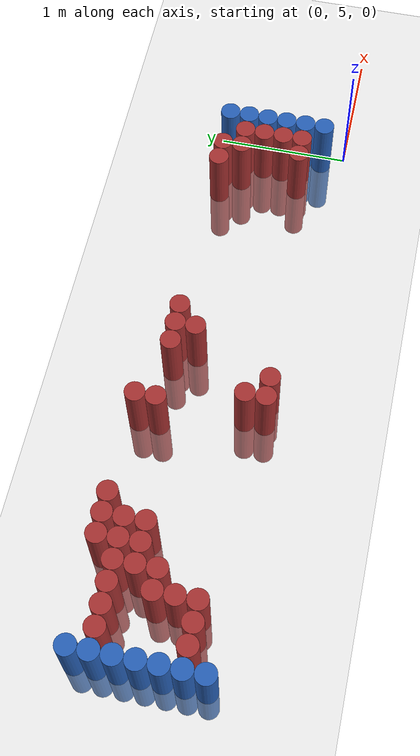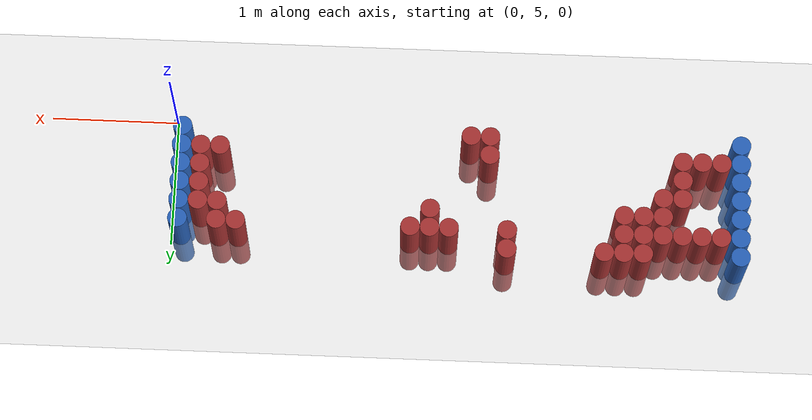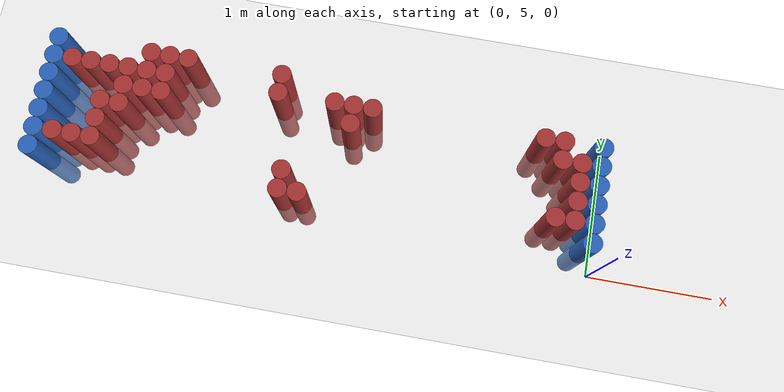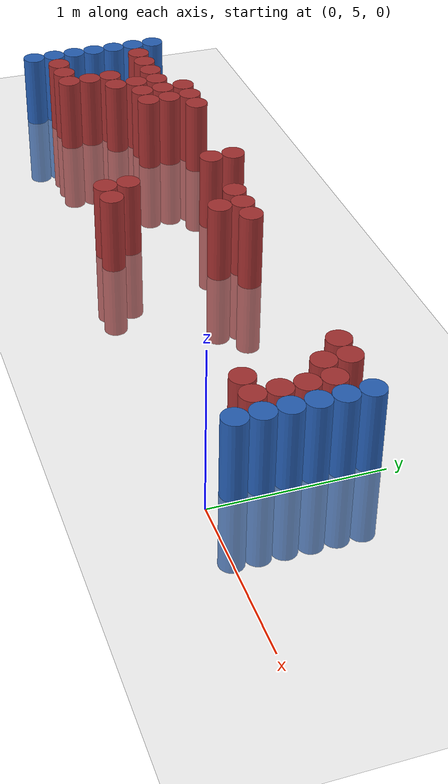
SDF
<sdf version="1.6">
 <world name="default">
  <model name="ground_plane">
   <static>1</static>
   <link name="link">
    <collision name="collision">
     <geometry><plane><normal>0 0 1</normal><size>100 100</size></plane></geometry>
     <surface><friction><ode><mu>100</mu><mu2>50</mu2></ode></friction></surface>
    </collision>
    <visual name="visual">
     <cast_shadows>0</cast_shadows>
     <geometry><plane><normal>0 0 1</normal><size>100 100</size></plane></geometry>
     <material>
      <script><uri>file://media/materials/scripts/gazebo.material</uri><name>Gazebo/Grey</name></script>
     </material>
    </visual>
   </link>
  </model>
  <model name="unit_cylinder_96">
   <static>1</static>
   <pose>-4.425000 5.175000 0.000000 0.000000 0.000000 0.000000</pose>
   <link name="link">
    <inertial>
     <mass>1</mass>
     <inertia><ixx>0.145833</ixx><ixy>0</ixy><ixz>0</ixz><iyy>0.145833</iyy><iyz>0</iyz><izz>0.125</izz></inertia>
    </inertial>
    <collision name="collision">
     <geometry><cylinder><radius>0.075000</radius><length>1</length></cylinder></geometry>
    </collision>
    <visual name="visual">
     <geometry><cylinder><radius>0.075000</radius><length>1</length></cylinder></geometry>
     <material>
      <ambient>0.152000 0.379000 0.720000 1</ambient>
      <diffuse>0.152000 0.379000 0.720000 1</diffuse>
     </material>
     <material>
      <script><name>Gazebo/Grey</name><uri>file://media/materials/scripts/gazebo.material</uri></script>
     </material>
    </visual>
   </link>
  </model>
  <model name="unit_cylinder_97">
   <static>1</static>
   <pose>-4.425000 5.325000 0.000000 0.000000 0.000000 0.000000</pose>
   <link name="link">
    <inertial>
     <mass>1</mass>
     <inertia><ixx>0.145833</ixx><ixy>0</ixy><ixz>0</ixz><iyy>0.145833</iyy><iyz>0</iyz><izz>0.125</izz></inertia>
    </inertial>
    <collision name="collision">
     <geometry><cylinder><radius>0.075000</radius><length>1</length></cylinder></geometry>
    </collision>
    <visual name="visual">
     <geometry><cylinder><radius>0.075000</radius><length>1</length></cylinder></geometry>
     <material>
      <ambient>0.152000 0.379000 0.720000 1</ambient>
      <diffuse>0.152000 0.379000 0.720000 1</diffuse>
     </material>
     <material>
      <script><name>Gazebo/Grey</name><uri>file://media/materials/scripts/gazebo.material</uri></script>
     </material>
    </visual>
   </link>
  </model>
  <model name="unit_cylinder_98">
   <static>1</static>
   <pose>-4.425000 5.475000 0.000000 0.000000 0.000000 0.000000</pose>
   <link name="link">
    <inertial>
     <mass>1</mass>
     <inertia><ixx>0.145833</ixx><ixy>0</ixy><ixz>0</ixz><iyy>0.145833</iyy><iyz>0</iyz><izz>0.125</izz></inertia>
    </inertial>
    <collision name="collision">
     <geometry><cylinder><radius>0.075000</radius><length>1</length></cylinder></geometry>
    </collision>
    <visual name="visual">
     <geometry><cylinder><radius>0.075000</radius><length>1</length></cylinder></geometry>
     <material>
      <ambient>0.152000 0.379000 0.720000 1</ambient>
      <diffuse>0.152000 0.379000 0.720000 1</diffuse>
     </material>
     <material>
      <script><name>Gazebo/Grey</name><uri>file://media/materials/scripts/gazebo.material</uri></script>
     </material>
    </visual>
   </link>
  </model>
  <model name="unit_cylinder_99">
   <static>1</static>
   <pose>-4.425000 5.625000 0.000000 0.000000 0.000000 0.000000</pose>
   <link name="link">
    <inertial>
     <mass>1</mass>
     <inertia><ixx>0.145833</ixx><ixy>0</ixy><ixz>0</ixz><iyy>0.145833</iyy><iyz>0</iyz><izz>0.125</izz></inertia>
    </inertial>
    <collision name="collision">
     <geometry><cylinder><radius>0.075000</radius><length>1</length></cylinder></geometry>
    </collision>
    <visual name="visual">
     <geometry><cylinder><radius>0.075000</radius><length>1</length></cylinder></geometry>
     <material>
      <ambient>0.152000 0.379000 0.720000 1</ambient>
      <diffuse>0.152000 0.379000 0.720000 1</diffuse>
     </material>
     <material>
      <script><name>Gazebo/Grey</name><uri>file://media/materials/scripts/gazebo.material</uri></script>
     </material>
    </visual>
   </link>
  </model>
  <model name="unit_cylinder_100">
   <static>1</static>
   <pose>-4.425000 5.775000 0.000000 0.000000 0.000000 0.000000</pose>
   <link name="link">
    <inertial>
     <mass>1</mass>
     <inertia><ixx>0.145833</ixx><ixy>0</ixy><ixz>0</ixz><iyy>0.145833</iyy><iyz>0</iyz><izz>0.125</izz></inertia>
    </inertial>
    <collision name="collision">
     <geometry><cylinder><radius>0.075000</radius><length>1</length></cylinder></geometry>
    </collision>
    <visual name="visual">
     <geometry><cylinder><radius>0.075000</radius><length>1</length></cylinder></geometry>
     <material>
      <ambient>0.152000 0.379000 0.720000 1</ambient>
      <diffuse>0.152000 0.379000 0.720000 1</diffuse>
     </material>
     <material>
      <script><name>Gazebo/Grey</name><uri>file://media/materials/scripts/gazebo.material</uri></script>
     </material>
    </visual>
   </link>
  </model>
  <model name="unit_cylinder_101">
   <static>1</static>
   <pose>-4.425000 5.925000 0.000000 0.000000 0.000000 0.000000</pose>
   <link name="link">
    <inertial>
     <mass>1</mass>
     <inertia><ixx>0.145833</ixx><ixy>0</ixy><ixz>0</ixz><iyy>0.145833</iyy><iyz>0</iyz><izz>0.125</izz></inertia>
    </inertial>
    <collision name="collision">
     <geometry><cylinder><radius>0.075000</radius><length>1</length></cylinder></geometry>
    </collision>
    <visual name="visual">
     <geometry><cylinder><radius>0.075000</radius><length>1</length></cylinder></geometry>
     <material>
      <ambient>0.152000 0.379000 0.720000 1</ambient>
      <diffuse>0.152000 0.379000 0.720000 1</diffuse>
     </material>
     <material>
      <script><name>Gazebo/Grey</name><uri>file://media/materials/scripts/gazebo.material</uri></script>
     </material>
    </visual>
   </link>
  </model>
  <model name="unit_cylinder_102">
   <static>1</static>
   <pose>-4.425000 6.075000 0.000000 0.000000 0.000000 0.000000</pose>
   <link name="link">
    <inertial>
     <mass>1</mass>
     <inertia><ixx>0.145833</ixx><ixy>0</ixy><ixz>0</ixz><iyy>0.145833</iyy><iyz>0</iyz><izz>0.125</izz></inertia>
    </inertial>
    <collision name="collision">
     <geometry><cylinder><radius>0.075000</radius><length>1</length></cylinder></geometry>
    </collision>
    <visual name="visual">
     <geometry><cylinder><radius>0.075000</radius><length>1</length></cylinder></geometry>
     <material>
      <ambient>0.152000 0.379000 0.720000 1</ambient>
      <diffuse>0.152000 0.379000 0.720000 1</diffuse>
     </material>
     <material>
      <script><name>Gazebo/Grey</name><uri>file://media/materials/scripts/gazebo.material</uri></script>
     </material>
    </visual>
   </link>
  </model>
  <model name="unit_cylinder_126">
   <static>1</static>
   <pose>-4.275000 5.325000 0.000000 0.000000 0.000000 0.000000</pose>
   <link name="link">
    <inertial>
     <mass>1</mass>
     <inertia><ixx>0.145833</ixx><ixy>0</ixy><ixz>0</ixz><iyy>0.145833</iyy><iyz>0</iyz><izz>0.125</izz></inertia>
    </inertial>
    <collision name="collision">
     <geometry><cylinder><radius>0.075000</radius><length>1</length></cylinder></geometry>
    </collision>
    <visual name="visual">
     <geometry><cylinder><radius>0.075000</radius><length>1</length></cylinder></geometry>
     <material>
      <ambient>0.648000 0.192000 0.192000 1</ambient>
      <diffuse>0.648000 0.192000 0.192000 1</diffuse>
     </material>
     <material>
      <script><name>Gazebo/Grey</name><uri>file://media/materials/scripts/gazebo.material</uri></script>
     </material>
    </visual>
   </link>
  </model>
  <model name="unit_cylinder_127">
   <static>1</static>
   <pose>-4.275000 5.925000 0.000000 0.000000 0.000000 0.000000</pose>
   <link name="link">
    <inertial>
     <mass>1</mass>
     <inertia><ixx>0.145833</ixx><ixy>0</ixy><ixz>0</ixz><iyy>0.145833</iyy><iyz>0</iyz><izz>0.125</izz></inertia>
    </inertial>
    <collision name="collision">
     <geometry><cylinder><radius>0.075000</radius><length>1</length></cylinder></geometry>
    </collision>
    <visual name="visual">
     <geometry><cylinder><radius>0.075000</radius><length>1</length></cylinder></geometry>
     <material>
      <ambient>0.648000 0.192000 0.192000 1</ambient>
      <diffuse>0.648000 0.192000 0.192000 1</diffuse>
     </material>
     <material>
      <script><name>Gazebo/Grey</name><uri>file://media/materials/scripts/gazebo.material</uri></script>
     </material>
    </visual>
   </link>
  </model>
  <model name="unit_cylinder_143">
   <static>1</static>
   <pose>-4.125000 5.325000 0.000000 0.000000 0.000000 0.000000</pose>
   <link name="link">
    <inertial>
     <mass>1</mass>
     <inertia><ixx>0.145833</ixx><ixy>0</ixy><ixz>0</ixz><iyy>0.145833</iyy><iyz>0</iyz><izz>0.125</izz></inertia>
    </inertial>
    <collision name="collision">
     <geometry><cylinder><radius>0.075000</radius><length>1</length></cylinder></geometry>
    </collision>
    <visual name="visual">
     <geometry><cylinder><radius>0.075000</radius><length>1</length></cylinder></geometry>
     <material>
      <ambient>0.648000 0.192000 0.192000 1</ambient>
      <diffuse>0.648000 0.192000 0.192000 1</diffuse>
     </material>
     <material>
      <script><name>Gazebo/Grey</name><uri>file://media/materials/scripts/gazebo.material</uri></script>
     </material>
    </visual>
   </link>
  </model>
  <model name="unit_cylinder_144">
   <static>1</static>
   <pose>-4.125000 5.925000 0.000000 0.000000 0.000000 0.000000</pose>
   <link name="link">
    <inertial>
     <mass>1</mass>
     <inertia><ixx>0.145833</ixx><ixy>0</ixy><ixz>0</ixz><iyy>0.145833</iyy><iyz>0</iyz><izz>0.125</izz></inertia>
    </inertial>
    <collision name="collision">
     <geometry><cylinder><radius>0.075000</radius><length>1</length></cylinder></geometry>
    </collision>
    <visual name="visual">
     <geometry><cylinder><radius>0.075000</radius><length>1</length></cylinder></geometry>
     <material>
      <ambient>0.648000 0.192000 0.192000 1</ambient>
      <diffuse>0.648000 0.192000 0.192000 1</diffuse>
     </material>
     <material>
      <script><name>Gazebo/Grey</name><uri>file://media/materials/scripts/gazebo.material</uri></script>
     </material>
    </visual>
   </link>
  </model>
  <model name="unit_cylinder_151">
   <static>1</static>
   <pose>-3.975000 5.325000 0.000000 0.000000 0.000000 0.000000</pose>
   <link name="link">
    <inertial>
     <mass>1</mass>
     <inertia><ixx>0.145833</ixx><ixy>0</ixy><ixz>0</ixz><iyy>0.145833</iyy><iyz>0</iyz><izz>0.125</izz></inertia>
    </inertial>
    <collision name="collision">
     <geometry><cylinder><radius>0.075000</radius><length>1</length></cylinder></geometry>
    </collision>
    <visual name="visual">
     <geometry><cylinder><radius>0.075000</radius><length>1</length></cylinder></geometry>
     <material>
      <ambient>0.648000 0.192000 0.192000 1</ambient>
      <diffuse>0.648000 0.192000 0.192000 1</diffuse>
     </material>
     <material>
      <script><name>Gazebo/Grey</name><uri>file://media/materials/scripts/gazebo.material</uri></script>
     </material>
    </visual>
   </link>
  </model>
  <model name="unit_cylinder_152">
   <static>1</static>
   <pose>-3.975000 5.475000 0.000000 0.000000 0.000000 0.000000</pose>
   <link name="link">
    <inertial>
     <mass>1</mass>
     <inertia><ixx>0.145833</ixx><ixy>0</ixy><ixz>0</ixz><iyy>0.145833</iyy><iyz>0</iyz><izz>0.125</izz></inertia>
    </inertial>
    <collision name="collision">
     <geometry><cylinder><radius>0.075000</radius><length>1</length></cylinder></geometry>
    </collision>
    <visual name="visual">
     <geometry><cylinder><radius>0.075000</radius><length>1</length></cylinder></geometry>
     <material>
      <ambient>0.648000 0.192000 0.192000 1</ambient>
      <diffuse>0.648000 0.192000 0.192000 1</diffuse>
     </material>
     <material>
      <script><name>Gazebo/Grey</name><uri>file://media/materials/scripts/gazebo.material</uri></script>
     </material>
    </visual>
   </link>
  </model>
  <model name="unit_cylinder_153">
   <static>1</static>
   <pose>-3.975000 5.625000 0.000000 0.000000 0.000000 0.000000</pose>
   <link name="link">
    <inertial>
     <mass>1</mass>
     <inertia><ixx>0.145833</ixx><ixy>0</ixy><ixz>0</ixz><iyy>0.145833</iyy><iyz>0</iyz><izz>0.125</izz></inertia>
    </inertial>
    <collision name="collision">
     <geometry><cylinder><radius>0.075000</radius><length>1</length></cylinder></geometry>
    </collision>
    <visual name="visual">
     <geometry><cylinder><radius>0.075000</radius><length>1</length></cylinder></geometry>
     <material>
      <ambient>0.648000 0.192000 0.192000 1</ambient>
      <diffuse>0.648000 0.192000 0.192000 1</diffuse>
     </material>
     <material>
      <script><name>Gazebo/Grey</name><uri>file://media/materials/scripts/gazebo.material</uri></script>
     </material>
    </visual>
   </link>
  </model>
  <model name="unit_cylinder_154">
   <static>1</static>
   <pose>-3.975000 5.925000 0.000000 0.000000 0.000000 0.000000</pose>
   <link name="link">
    <inertial>
     <mass>1</mass>
     <inertia><ixx>0.145833</ixx><ixy>0</ixy><ixz>0</ixz><iyy>0.145833</iyy><iyz>0</iyz><izz>0.125</izz></inertia>
    </inertial>
    <collision name="collision">
     <geometry><cylinder><radius>0.075000</radius><length>1</length></cylinder></geometry>
    </collision>
    <visual name="visual">
     <geometry><cylinder><radius>0.075000</radius><length>1</length></cylinder></geometry>
     <material>
      <ambient>0.648000 0.192000 0.192000 1</ambient>
      <diffuse>0.648000 0.192000 0.192000 1</diffuse>
     </material>
     <material>
      <script><name>Gazebo/Grey</name><uri>file://media/materials/scripts/gazebo.material</uri></script>
     </material>
    </visual>
   </link>
  </model>
  <model name="unit_cylinder_158">
   <static>1</static>
   <pose>-3.825000 5.625000 0.000000 0.000000 0.000000 0.000000</pose>
   <link name="link">
    <inertial>
     <mass>1</mass>
     <inertia><ixx>0.145833</ixx><ixy>0</ixy><ixz>0</ixz><iyy>0.145833</iyy><iyz>0</iyz><izz>0.125</izz></inertia>
    </inertial>
    <collision name="collision">
     <geometry><cylinder><radius>0.075000</radius><length>1</length></cylinder></geometry>
    </collision>
    <visual name="visual">
     <geometry><cylinder><radius>0.075000</radius><length>1</length></cylinder></geometry>
     <material>
      <ambient>0.648000 0.192000 0.192000 1</ambient>
      <diffuse>0.648000 0.192000 0.192000 1</diffuse>
     </material>
     <material>
      <script><name>Gazebo/Grey</name><uri>file://media/materials/scripts/gazebo.material</uri></script>
     </material>
    </visual>
   </link>
  </model>
  <model name="unit_cylinder_159">
   <static>1</static>
   <pose>-3.825000 5.775000 0.000000 0.000000 0.000000 0.000000</pose>
   <link name="link">
    <inertial>
     <mass>1</mass>
     <inertia><ixx>0.145833</ixx><ixy>0</ixy><ixz>0</ixz><iyy>0.145833</iyy><iyz>0</iyz><izz>0.125</izz></inertia>
    </inertial>
    <collision name="collision">
     <geometry><cylinder><radius>0.075000</radius><length>1</length></cylinder></geometry>
    </collision>
    <visual name="visual">
     <geometry><cylinder><radius>0.075000</radius><length>1</length></cylinder></geometry>
     <material>
      <ambient>0.648000 0.192000 0.192000 1</ambient>
      <diffuse>0.648000 0.192000 0.192000 1</diffuse>
     </material>
     <material>
      <script><name>Gazebo/Grey</name><uri>file://media/materials/scripts/gazebo.material</uri></script>
     </material>
    </visual>
   </link>
  </model>
  <model name="unit_cylinder_160">
   <static>1</static>
   <pose>-3.825000 5.925000 0.000000 0.000000 0.000000 0.000000</pose>
   <link name="link">
    <inertial>
     <mass>1</mass>
     <inertia><ixx>0.145833</ixx><ixy>0</ixy><ixz>0</ixz><iyy>0.145833</iyy><iyz>0</iyz><izz>0.125</izz></inertia>
    </inertial>
    <collision name="collision">
     <geometry><cylinder><radius>0.075000</radius><length>1</length></cylinder></geometry>
    </collision>
    <visual name="visual">
     <geometry><cylinder><radius>0.075000</radius><length>1</length></cylinder></geometry>
     <material>
      <ambient>0.648000 0.192000 0.192000 1</ambient>
      <diffuse>0.648000 0.192000 0.192000 1</diffuse>
     </material>
     <material>
      <script><name>Gazebo/Grey</name><uri>file://media/materials/scripts/gazebo.material</uri></script>
     </material>
    </visual>
   </link>
  </model>
  <model name="unit_cylinder_164">
   <static>1</static>
   <pose>-3.675000 5.775000 0.000000 0.000000 0.000000 0.000000</pose>
   <link name="link">
    <inertial>
     <mass>1</mass>
     <inertia><ixx>0.145833</ixx><ixy>0</ixy><ixz>0</ixz><iyy>0.145833</iyy><iyz>0</iyz><izz>0.125</izz></inertia>
    </inertial>
    <collision name="collision">
     <geometry><cylinder><radius>0.075000</radius><length>1</length></cylinder></geometry>
    </collision>
    <visual name="visual">
     <geometry><cylinder><radius>0.075000</radius><length>1</length></cylinder></geometry>
     <material>
      <ambient>0.648000 0.192000 0.192000 1</ambient>
      <diffuse>0.648000 0.192000 0.192000 1</diffuse>
     </material>
     <material>
      <script><name>Gazebo/Grey</name><uri>file://media/materials/scripts/gazebo.material</uri></script>
     </material>
    </visual>
   </link>
  </model>
  <model name="unit_cylinder_165">
   <static>1</static>
   <pose>-3.675000 5.925000 0.000000 0.000000 0.000000 0.000000</pose>
   <link name="link">
    <inertial>
     <mass>1</mass>
     <inertia><ixx>0.145833</ixx><ixy>0</ixy><ixz>0</ixz><iyy>0.145833</iyy><iyz>0</iyz><izz>0.125</izz></inertia>
    </inertial>
    <collision name="collision">
     <geometry><cylinder><radius>0.075000</radius><length>1</length></cylinder></geometry>
    </collision>
    <visual name="visual">
     <geometry><cylinder><radius>0.075000</radius><length>1</length></cylinder></geometry>
     <material>
      <ambient>0.648000 0.192000 0.192000 1</ambient>
      <diffuse>0.648000 0.192000 0.192000 1</diffuse>
     </material>
     <material>
      <script><name>Gazebo/Grey</name><uri>file://media/materials/scripts/gazebo.material</uri></script>
     </material>
    </visual>
   </link>
  </model>
  <model name="unit_cylinder_166">
   <static>1</static>
   <pose>-3.675000 6.075000 0.000000 0.000000 0.000000 0.000000</pose>
   <link name="link">
    <inertial>
     <mass>1</mass>
     <inertia><ixx>0.145833</ixx><ixy>0</ixy><ixz>0</ixz><iyy>0.145833</iyy><iyz>0</iyz><izz>0.125</izz></inertia>
    </inertial>
    <collision name="collision">
     <geometry><cylinder><radius>0.075000</radius><length>1</length></cylinder></geometry>
    </collision>
    <visual name="visual">
     <geometry><cylinder><radius>0.075000</radius><length>1</length></cylinder></geometry>
     <material>
      <ambient>0.648000 0.192000 0.192000 1</ambient>
      <diffuse>0.648000 0.192000 0.192000 1</diffuse>
     </material>
     <material>
      <script><name>Gazebo/Grey</name><uri>file://media/materials/scripts/gazebo.material</uri></script>
     </material>
    </visual>
   </link>
  </model>
  <model name="unit_cylinder_171">
   <static>1</static>
   <pose>-3.525000 5.775000 0.000000 0.000000 0.000000 0.000000</pose>
   <link name="link">
    <inertial>
     <mass>1</mass>
     <inertia><ixx>0.145833</ixx><ixy>0</ixy><ixz>0</ixz><iyy>0.145833</iyy><iyz>0</iyz><izz>0.125</izz></inertia>
    </inertial>
    <collision name="collision">
     <geometry><cylinder><radius>0.075000</radius><length>1</length></cylinder></geometry>
    </collision>
    <visual name="visual">
     <geometry><cylinder><radius>0.075000</radius><length>1</length></cylinder></geometry>
     <material>
      <ambient>0.648000 0.192000 0.192000 1</ambient>
      <diffuse>0.648000 0.192000 0.192000 1</diffuse>
     </material>
     <material>
      <script><name>Gazebo/Grey</name><uri>file://media/materials/scripts/gazebo.material</uri></script>
     </material>
    </visual>
   </link>
  </model>
  <model name="unit_cylinder_172">
   <static>1</static>
   <pose>-3.525000 5.925000 0.000000 0.000000 0.000000 0.000000</pose>
   <link name="link">
    <inertial>
     <mass>1</mass>
     <inertia><ixx>0.145833</ixx><ixy>0</ixy><ixz>0</ixz><iyy>0.145833</iyy><iyz>0</iyz><izz>0.125</izz></inertia>
    </inertial>
    <collision name="collision">
     <geometry><cylinder><radius>0.075000</radius><length>1</length></cylinder></geometry>
    </collision>
    <visual name="visual">
     <geometry><cylinder><radius>0.075000</radius><length>1</length></cylinder></geometry>
     <material>
      <ambient>0.648000 0.192000 0.192000 1</ambient>
      <diffuse>0.648000 0.192000 0.192000 1</diffuse>
     </material>
     <material>
      <script><name>Gazebo/Grey</name><uri>file://media/materials/scripts/gazebo.material</uri></script>
     </material>
    </visual>
   </link>
  </model>
  <model name="unit_cylinder_173">
   <static>1</static>
   <pose>-3.525000 6.075000 0.000000 0.000000 0.000000 0.000000</pose>
   <link name="link">
    <inertial>
     <mass>1</mass>
     <inertia><ixx>0.145833</ixx><ixy>0</ixy><ixz>0</ixz><iyy>0.145833</iyy><iyz>0</iyz><izz>0.125</izz></inertia>
    </inertial>
    <collision name="collision">
     <geometry><cylinder><radius>0.075000</radius><length>1</length></cylinder></geometry>
    </collision>
    <visual name="visual">
     <geometry><cylinder><radius>0.075000</radius><length>1</length></cylinder></geometry>
     <material>
      <ambient>0.648000 0.192000 0.192000 1</ambient>
      <diffuse>0.648000 0.192000 0.192000 1</diffuse>
     </material>
     <material>
      <script><name>Gazebo/Grey</name><uri>file://media/materials/scripts/gazebo.material</uri></script>
     </material>
    </visual>
   </link>
  </model>
  <model name="unit_cylinder_182">
   <static>1</static>
   <pose>-3.375000 6.075000 0.000000 0.000000 0.000000 0.000000</pose>
   <link name="link">
    <inertial>
     <mass>1</mass>
     <inertia><ixx>0.145833</ixx><ixy>0</ixy><ixz>0</ixz><iyy>0.145833</iyy><iyz>0</iyz><izz>0.125</izz></inertia>
    </inertial>
    <collision name="collision">
     <geometry><cylinder><radius>0.075000</radius><length>1</length></cylinder></geometry>
    </collision>
    <visual name="visual">
     <geometry><cylinder><radius>0.075000</radius><length>1</length></cylinder></geometry>
     <material>
      <ambient>0.648000 0.192000 0.192000 1</ambient>
      <diffuse>0.648000 0.192000 0.192000 1</diffuse>
     </material>
     <material>
      <script><name>Gazebo/Grey</name><uri>file://media/materials/scripts/gazebo.material</uri></script>
     </material>
    </visual>
   </link>
  </model>
  <model name="unit_cylinder_207">
   <static>1</static>
   <pose>-2.625000 5.925000 0.000000 0.000000 0.000000 0.000000</pose>
   <link name="link">
    <inertial>
     <mass>1</mass>
     <inertia><ixx>0.145833</ixx><ixy>0</ixy><ixz>0</ixz><iyy>0.145833</iyy><iyz>0</iyz><izz>0.125</izz></inertia>
    </inertial>
    <collision name="collision">
     <geometry><cylinder><radius>0.075000</radius><length>1</length></cylinder></geometry>
    </collision>
    <visual name="visual">
     <geometry><cylinder><radius>0.075000</radius><length>1</length></cylinder></geometry>
     <material>
      <ambient>0.648000 0.192000 0.192000 1</ambient>
      <diffuse>0.648000 0.192000 0.192000 1</diffuse>
     </material>
     <material>
      <script><name>Gazebo/Grey</name><uri>file://media/materials/scripts/gazebo.material</uri></script>
     </material>
    </visual>
   </link>
  </model>
  <model name="unit_cylinder_208">
   <static>1</static>
   <pose>-2.625000 6.075000 0.000000 0.000000 0.000000 0.000000</pose>
   <link name="link">
    <inertial>
     <mass>1</mass>
     <inertia><ixx>0.145833</ixx><ixy>0</ixy><ixz>0</ixz><iyy>0.145833</iyy><iyz>0</iyz><izz>0.125</izz></inertia>
    </inertial>
    <collision name="collision">
     <geometry><cylinder><radius>0.075000</radius><length>1</length></cylinder></geometry>
    </collision>
    <visual name="visual">
     <geometry><cylinder><radius>0.075000</radius><length>1</length></cylinder></geometry>
     <material>
      <ambient>0.648000 0.192000 0.192000 1</ambient>
      <diffuse>0.648000 0.192000 0.192000 1</diffuse>
     </material>
     <material>
      <script><name>Gazebo/Grey</name><uri>file://media/materials/scripts/gazebo.material</uri></script>
     </material>
    </visual>
   </link>
  </model>
  <model name="unit_cylinder_216">
   <static>1</static>
   <pose>-2.475000 5.175000 0.000000 0.000000 0.000000 0.000000</pose>
   <link name="link">
    <inertial>
     <mass>1</mass>
     <inertia><ixx>0.145833</ixx><ixy>0</ixy><ixz>0</ixz><iyy>0.145833</iyy><iyz>0</iyz><izz>0.125</izz></inertia>
    </inertial>
    <collision name="collision">
     <geometry><cylinder><radius>0.075000</radius><length>1</length></cylinder></geometry>
    </collision>
    <visual name="visual">
     <geometry><cylinder><radius>0.075000</radius><length>1</length></cylinder></geometry>
     <material>
      <ambient>0.648000 0.192000 0.192000 1</ambient>
      <diffuse>0.648000 0.192000 0.192000 1</diffuse>
     </material>
     <material>
      <script><name>Gazebo/Grey</name><uri>file://media/materials/scripts/gazebo.material</uri></script>
     </material>
    </visual>
   </link>
  </model>
  <model name="unit_cylinder_217">
   <static>1</static>
   <pose>-2.475000 5.325000 0.000000 0.000000 0.000000 0.000000</pose>
   <link name="link">
    <inertial>
     <mass>1</mass>
     <inertia><ixx>0.145833</ixx><ixy>0</ixy><ixz>0</ixz><iyy>0.145833</iyy><iyz>0</iyz><izz>0.125</izz></inertia>
    </inertial>
    <collision name="collision">
     <geometry><cylinder><radius>0.075000</radius><length>1</length></cylinder></geometry>
    </collision>
    <visual name="visual">
     <geometry><cylinder><radius>0.075000</radius><length>1</length></cylinder></geometry>
     <material>
      <ambient>0.648000 0.192000 0.192000 1</ambient>
      <diffuse>0.648000 0.192000 0.192000 1</diffuse>
     </material>
     <material>
      <script><name>Gazebo/Grey</name><uri>file://media/materials/scripts/gazebo.material</uri></script>
     </material>
    </visual>
   </link>
  </model>
  <model name="unit_cylinder_234">
   <static>1</static>
   <pose>-2.325000 5.175000 0.000000 0.000000 0.000000 0.000000</pose>
   <link name="link">
    <inertial>
     <mass>1</mass>
     <inertia><ixx>0.145833</ixx><ixy>0</ixy><ixz>0</ixz><iyy>0.145833</iyy><iyz>0</iyz><izz>0.125</izz></inertia>
    </inertial>
    <collision name="collision">
     <geometry><cylinder><radius>0.075000</radius><length>1</length></cylinder></geometry>
    </collision>
    <visual name="visual">
     <geometry><cylinder><radius>0.075000</radius><length>1</length></cylinder></geometry>
     <material>
      <ambient>0.648000 0.192000 0.192000 1</ambient>
      <diffuse>0.648000 0.192000 0.192000 1</diffuse>
     </material>
     <material>
      <script><name>Gazebo/Grey</name><uri>file://media/materials/scripts/gazebo.material</uri></script>
     </material>
    </visual>
   </link>
  </model>
  <model name="unit_cylinder_241">
   <static>1</static>
   <pose>-2.175000 5.925000 0.000000 0.000000 0.000000 0.000000</pose>
   <link name="link">
    <inertial>
     <mass>1</mass>
     <inertia><ixx>0.145833</ixx><ixy>0</ixy><ixz>0</ixz><iyy>0.145833</iyy><iyz>0</iyz><izz>0.125</izz></inertia>
    </inertial>
    <collision name="collision">
     <geometry><cylinder><radius>0.075000</radius><length>1</length></cylinder></geometry>
    </collision>
    <visual name="visual">
     <geometry><cylinder><radius>0.075000</radius><length>1</length></cylinder></geometry>
     <material>
      <ambient>0.648000 0.192000 0.192000 1</ambient>
      <diffuse>0.648000 0.192000 0.192000 1</diffuse>
     </material>
     <material>
      <script><name>Gazebo/Grey</name><uri>file://media/materials/scripts/gazebo.material</uri></script>
     </material>
    </visual>
   </link>
  </model>
  <model name="unit_cylinder_245">
   <static>1</static>
   <pose>-2.025000 5.775000 0.000000 0.000000 0.000000 0.000000</pose>
   <link name="link">
    <inertial>
     <mass>1</mass>
     <inertia><ixx>0.145833</ixx><ixy>0</ixy><ixz>0</ixz><iyy>0.145833</iyy><iyz>0</iyz><izz>0.125</izz></inertia>
    </inertial>
    <collision name="collision">
     <geometry><cylinder><radius>0.075000</radius><length>1</length></cylinder></geometry>
    </collision>
    <visual name="visual">
     <geometry><cylinder><radius>0.075000</radius><length>1</length></cylinder></geometry>
     <material>
      <ambient>0.648000 0.192000 0.192000 1</ambient>
      <diffuse>0.648000 0.192000 0.192000 1</diffuse>
     </material>
     <material>
      <script><name>Gazebo/Grey</name><uri>file://media/materials/scripts/gazebo.material</uri></script>
     </material>
    </visual>
   </link>
  </model>
  <model name="unit_cylinder_246">
   <static>1</static>
   <pose>-2.025000 5.925000 0.000000 0.000000 0.000000 0.000000</pose>
   <link name="link">
    <inertial>
     <mass>1</mass>
     <inertia><ixx>0.145833</ixx><ixy>0</ixy><ixz>0</ixz><iyy>0.145833</iyy><iyz>0</iyz><izz>0.125</izz></inertia>
    </inertial>
    <collision name="collision">
     <geometry><cylinder><radius>0.075000</radius><length>1</length></cylinder></geometry>
    </collision>
    <visual name="visual">
     <geometry><cylinder><radius>0.075000</radius><length>1</length></cylinder></geometry>
     <material>
      <ambient>0.648000 0.192000 0.192000 1</ambient>
      <diffuse>0.648000 0.192000 0.192000 1</diffuse>
     </material>
     <material>
      <script><name>Gazebo/Grey</name><uri>file://media/materials/scripts/gazebo.material</uri></script>
     </material>
    </visual>
   </link>
  </model>
  <model name="unit_cylinder_250">
   <static>1</static>
   <pose>-1.875000 5.925000 0.000000 0.000000 0.000000 0.000000</pose>
   <link name="link">
    <inertial>
     <mass>1</mass>
     <inertia><ixx>0.145833</ixx><ixy>0</ixy><ixz>0</ixz><iyy>0.145833</iyy><iyz>0</iyz><izz>0.125</izz></inertia>
    </inertial>
    <collision name="collision">
     <geometry><cylinder><radius>0.075000</radius><length>1</length></cylinder></geometry>
    </collision>
    <visual name="visual">
     <geometry><cylinder><radius>0.075000</radius><length>1</length></cylinder></geometry>
     <material>
      <ambient>0.648000 0.192000 0.192000 1</ambient>
      <diffuse>0.648000 0.192000 0.192000 1</diffuse>
     </material>
     <material>
      <script><name>Gazebo/Grey</name><uri>file://media/materials/scripts/gazebo.material</uri></script>
     </material>
    </visual>
   </link>
  </model>
  <model name="unit_cylinder_270">
   <static>1</static>
   <pose>-0.525000 5.925000 0.000000 0.000000 0.000000 0.000000</pose>
   <link name="link">
    <inertial>
     <mass>1</mass>
     <inertia><ixx>0.145833</ixx><ixy>0</ixy><ixz>0</ixz><iyy>0.145833</iyy><iyz>0</iyz><izz>0.125</izz></inertia>
    </inertial>
    <collision name="collision">
     <geometry><cylinder><radius>0.075000</radius><length>1</length></cylinder></geometry>
    </collision>
    <visual name="visual">
     <geometry><cylinder><radius>0.075000</radius><length>1</length></cylinder></geometry>
     <material>
      <ambient>0.648000 0.192000 0.192000 1</ambient>
      <diffuse>0.648000 0.192000 0.192000 1</diffuse>
     </material>
     <material>
      <script><name>Gazebo/Grey</name><uri>file://media/materials/scripts/gazebo.material</uri></script>
     </material>
    </visual>
   </link>
  </model>
  <model name="unit_cylinder_276">
   <static>1</static>
   <pose>-0.375000 5.325000 0.000000 0.000000 0.000000 0.000000</pose>
   <link name="link">
    <inertial>
     <mass>1</mass>
     <inertia><ixx>0.145833</ixx><ixy>0</ixy><ixz>0</ixz><iyy>0.145833</iyy><iyz>0</iyz><izz>0.125</izz></inertia>
    </inertial>
    <collision name="collision">
     <geometry><cylinder><radius>0.075000</radius><length>1</length></cylinder></geometry>
    </collision>
    <visual name="visual">
     <geometry><cylinder><radius>0.075000</radius><length>1</length></cylinder></geometry>
     <material>
      <ambient>0.648000 0.192000 0.192000 1</ambient>
      <diffuse>0.648000 0.192000 0.192000 1</diffuse>
     </material>
     <material>
      <script><name>Gazebo/Grey</name><uri>file://media/materials/scripts/gazebo.material</uri></script>
     </material>
    </visual>
   </link>
  </model>
  <model name="unit_cylinder_277">
   <static>1</static>
   <pose>-0.375000 5.775000 0.000000 0.000000 0.000000 0.000000</pose>
   <link name="link">
    <inertial>
     <mass>1</mass>
     <inertia><ixx>0.145833</ixx><ixy>0</ixy><ixz>0</ixz><iyy>0.145833</iyy><iyz>0</iyz><izz>0.125</izz></inertia>
    </inertial>
    <collision name="collision">
     <geometry><cylinder><radius>0.075000</radius><length>1</length></cylinder></geometry>
    </collision>
    <visual name="visual">
     <geometry><cylinder><radius>0.075000</radius><length>1</length></cylinder></geometry>
     <material>
      <ambient>0.648000 0.192000 0.192000 1</ambient>
      <diffuse>0.648000 0.192000 0.192000 1</diffuse>
     </material>
     <material>
      <script><name>Gazebo/Grey</name><uri>file://media/materials/scripts/gazebo.material</uri></script>
     </material>
    </visual>
   </link>
  </model>
  <model name="unit_cylinder_278">
   <static>1</static>
   <pose>-0.375000 5.925000 0.000000 0.000000 0.000000 0.000000</pose>
   <link name="link">
    <inertial>
     <mass>1</mass>
     <inertia><ixx>0.145833</ixx><ixy>0</ixy><ixz>0</ixz><iyy>0.145833</iyy><iyz>0</iyz><izz>0.125</izz></inertia>
    </inertial>
    <collision name="collision">
     <geometry><cylinder><radius>0.075000</radius><length>1</length></cylinder></geometry>
    </collision>
    <visual name="visual">
     <geometry><cylinder><radius>0.075000</radius><length>1</length></cylinder></geometry>
     <material>
      <ambient>0.648000 0.192000 0.192000 1</ambient>
      <diffuse>0.648000 0.192000 0.192000 1</diffuse>
     </material>
     <material>
      <script><name>Gazebo/Grey</name><uri>file://media/materials/scripts/gazebo.material</uri></script>
     </material>
    </visual>
   </link>
  </model>
  <model name="unit_cylinder_287">
   <static>1</static>
   <pose>-0.225000 5.325000 0.000000 0.000000 0.000000 0.000000</pose>
   <link name="link">
    <inertial>
     <mass>1</mass>
     <inertia><ixx>0.145833</ixx><ixy>0</ixy><ixz>0</ixz><iyy>0.145833</iyy><iyz>0</iyz><izz>0.125</izz></inertia>
    </inertial>
    <collision name="collision">
     <geometry><cylinder><radius>0.075000</radius><length>1</length></cylinder></geometry>
    </collision>
    <visual name="visual">
     <geometry><cylinder><radius>0.075000</radius><length>1</length></cylinder></geometry>
     <material>
      <ambient>0.648000 0.192000 0.192000 1</ambient>
      <diffuse>0.648000 0.192000 0.192000 1</diffuse>
     </material>
     <material>
      <script><name>Gazebo/Grey</name><uri>file://media/materials/scripts/gazebo.material</uri></script>
     </material>
    </visual>
   </link>
  </model>
  <model name="unit_cylinder_288">
   <static>1</static>
   <pose>-0.225000 5.475000 0.000000 0.000000 0.000000 0.000000</pose>
   <link name="link">
    <inertial>
     <mass>1</mass>
     <inertia><ixx>0.145833</ixx><ixy>0</ixy><ixz>0</ixz><iyy>0.145833</iyy><iyz>0</iyz><izz>0.125</izz></inertia>
    </inertial>
    <collision name="collision">
     <geometry><cylinder><radius>0.075000</radius><length>1</length></cylinder></geometry>
    </collision>
    <visual name="visual">
     <geometry><cylinder><radius>0.075000</radius><length>1</length></cylinder></geometry>
     <material>
      <ambient>0.648000 0.192000 0.192000 1</ambient>
      <diffuse>0.648000 0.192000 0.192000 1</diffuse>
     </material>
     <material>
      <script><name>Gazebo/Grey</name><uri>file://media/materials/scripts/gazebo.material</uri></script>
     </material>
    </visual>
   </link>
  </model>
  <model name="unit_cylinder_289">
   <static>1</static>
   <pose>-0.225000 5.625000 0.000000 0.000000 0.000000 0.000000</pose>
   <link name="link">
    <inertial>
     <mass>1</mass>
     <inertia><ixx>0.145833</ixx><ixy>0</ixy><ixz>0</ixz><iyy>0.145833</iyy><iyz>0</iyz><izz>0.125</izz></inertia>
    </inertial>
    <collision name="collision">
     <geometry><cylinder><radius>0.075000</radius><length>1</length></cylinder></geometry>
    </collision>
    <visual name="visual">
     <geometry><cylinder><radius>0.075000</radius><length>1</length></cylinder></geometry>
     <material>
      <ambient>0.648000 0.192000 0.192000 1</ambient>
      <diffuse>0.648000 0.192000 0.192000 1</diffuse>
     </material>
     <material>
      <script><name>Gazebo/Grey</name><uri>file://media/materials/scripts/gazebo.material</uri></script>
     </material>
    </visual>
   </link>
  </model>
  <model name="unit_cylinder_290">
   <static>1</static>
   <pose>-0.225000 5.775000 0.000000 0.000000 0.000000 0.000000</pose>
   <link name="link">
    <inertial>
     <mass>1</mass>
     <inertia><ixx>0.145833</ixx><ixy>0</ixy><ixz>0</ixz><iyy>0.145833</iyy><iyz>0</iyz><izz>0.125</izz></inertia>
    </inertial>
    <collision name="collision">
     <geometry><cylinder><radius>0.075000</radius><length>1</length></cylinder></geometry>
    </collision>
    <visual name="visual">
     <geometry><cylinder><radius>0.075000</radius><length>1</length></cylinder></geometry>
     <material>
      <ambient>0.648000 0.192000 0.192000 1</ambient>
      <diffuse>0.648000 0.192000 0.192000 1</diffuse>
     </material>
     <material>
      <script><name>Gazebo/Grey</name><uri>file://media/materials/scripts/gazebo.material</uri></script>
     </material>
    </visual>
   </link>
  </model>
  <model name="unit_cylinder_306">
   <static>1</static>
   <pose>-0.075000 5.175000 0.000000 0.000000 0.000000 0.000000</pose>
   <link name="link">
    <inertial>
     <mass>1</mass>
     <inertia><ixx>0.145833</ixx><ixy>0</ixy><ixz>0</ixz><iyy>0.145833</iyy><iyz>0</iyz><izz>0.125</izz></inertia>
    </inertial>
    <collision name="collision">
     <geometry><cylinder><radius>0.075000</radius><length>1</length></cylinder></geometry>
    </collision>
    <visual name="visual">
     <geometry><cylinder><radius>0.075000</radius><length>1</length></cylinder></geometry>
     <material>
      <ambient>0.152000 0.379000 0.720000 1</ambient>
      <diffuse>0.152000 0.379000 0.720000 1</diffuse>
     </material>
     <material>
      <script><name>Gazebo/Grey</name><uri>file://media/materials/scripts/gazebo.material</uri></script>
     </material>
    </visual>
   </link>
  </model>
  <model name="unit_cylinder_307">
   <static>1</static>
   <pose>-0.075000 5.325000 0.000000 0.000000 0.000000 0.000000</pose>
   <link name="link">
    <inertial>
     <mass>1</mass>
     <inertia><ixx>0.145833</ixx><ixy>0</ixy><ixz>0</ixz><iyy>0.145833</iyy><iyz>0</iyz><izz>0.125</izz></inertia>
    </inertial>
    <collision name="collision">
     <geometry><cylinder><radius>0.075000</radius><length>1</length></cylinder></geometry>
    </collision>
    <visual name="visual">
     <geometry><cylinder><radius>0.075000</radius><length>1</length></cylinder></geometry>
     <material>
      <ambient>0.152000 0.379000 0.720000 1</ambient>
      <diffuse>0.152000 0.379000 0.720000 1</diffuse>
     </material>
     <material>
      <script><name>Gazebo/Grey</name><uri>file://media/materials/scripts/gazebo.material</uri></script>
     </material>
    </visual>
   </link>
  </model>
  <model name="unit_cylinder_308">
   <static>1</static>
   <pose>-0.075000 5.475000 0.000000 0.000000 0.000000 0.000000</pose>
   <link name="link">
    <inertial>
     <mass>1</mass>
     <inertia><ixx>0.145833</ixx><ixy>0</ixy><ixz>0</ixz><iyy>0.145833</iyy><iyz>0</iyz><izz>0.125</izz></inertia>
    </inertial>
    <collision name="collision">
     <geometry><cylinder><radius>0.075000</radius><length>1</length></cylinder></geometry>
    </collision>
    <visual name="visual">
     <geometry><cylinder><radius>0.075000</radius><length>1</length></cylinder></geometry>
     <material>
      <ambient>0.152000 0.379000 0.720000 1</ambient>
      <diffuse>0.152000 0.379000 0.720000 1</diffuse>
     </material>
     <material>
      <script><name>Gazebo/Grey</name><uri>file://media/materials/scripts/gazebo.material</uri></script>
     </material>
    </visual>
   </link>
  </model>
  <model name="unit_cylinder_309">
   <static>1</static>
   <pose>-0.075000 5.625000 0.000000 0.000000 0.000000 0.000000</pose>
   <link name="link">
    <inertial>
     <mass>1</mass>
     <inertia><ixx>0.145833</ixx><ixy>0</ixy><ixz>0</ixz><iyy>0.145833</iyy><iyz>0</iyz><izz>0.125</izz></inertia>
    </inertial>
    <collision name="collision">
     <geometry><cylinder><radius>0.075000</radius><length>1</length></cylinder></geometry>
    </collision>
    <visual name="visual">
     <geometry><cylinder><radius>0.075000</radius><length>1</length></cylinder></geometry>
     <material>
      <ambient>0.152000 0.379000 0.720000 1</ambient>
      <diffuse>0.152000 0.379000 0.720000 1</diffuse>
     </material>
     <material>
      <script><name>Gazebo/Grey</name><uri>file://media/materials/scripts/gazebo.material</uri></script>
     </material>
    </visual>
   </link>
  </model>
  <model name="unit_cylinder_310">
   <static>1</static>
   <pose>-0.075000 5.775000 0.000000 0.000000 0.000000 0.000000</pose>
   <link name="link">
    <inertial>
     <mass>1</mass>
     <inertia><ixx>0.145833</ixx><ixy>0</ixy><ixz>0</ixz><iyy>0.145833</iyy><iyz>0</iyz><izz>0.125</izz></inertia>
    </inertial>
    <collision name="collision">
     <geometry><cylinder><radius>0.075000</radius><length>1</length></cylinder></geometry>
    </collision>
    <visual name="visual">
     <geometry><cylinder><radius>0.075000</radius><length>1</length></cylinder></geometry>
     <material>
      <ambient>0.152000 0.379000 0.720000 1</ambient>
      <diffuse>0.152000 0.379000 0.720000 1</diffuse>
     </material>
     <material>
      <script><name>Gazebo/Grey</name><uri>file://media/materials/scripts/gazebo.material</uri></script>
     </material>
    </visual>
   </link>
  </model>
  <model name="unit_cylinder_311">
   <static>1</static>
   <pose>-0.075000 5.925000 0.000000 0.000000 0.000000 0.000000</pose>
   <link name="link">
    <inertial>
     <mass>1</mass>
     <inertia><ixx>0.145833</ixx><ixy>0</ixy><ixz>0</ixz><iyy>0.145833</iyy><iyz>0</iyz><izz>0.125</izz></inertia>
    </inertial>
    <collision name="collision">
     <geometry><cylinder><radius>0.075000</radius><length>1</length></cylinder></geometry>
    </collision>
    <visual name="visual">
     <geometry><cylinder><radius>0.075000</radius><length>1</length></cylinder></geometry>
     <material>
      <ambient>0.152000 0.379000 0.720000 1</ambient>
      <diffuse>0.152000 0.379000 0.720000 1</diffuse>
     </material>
     <material>
      <script><name>Gazebo/Grey</name><uri>file://media/materials/scripts/gazebo.material</uri></script>
     </material>
    </visual>
   </link>
  </model>
 </world>
</sdf>
